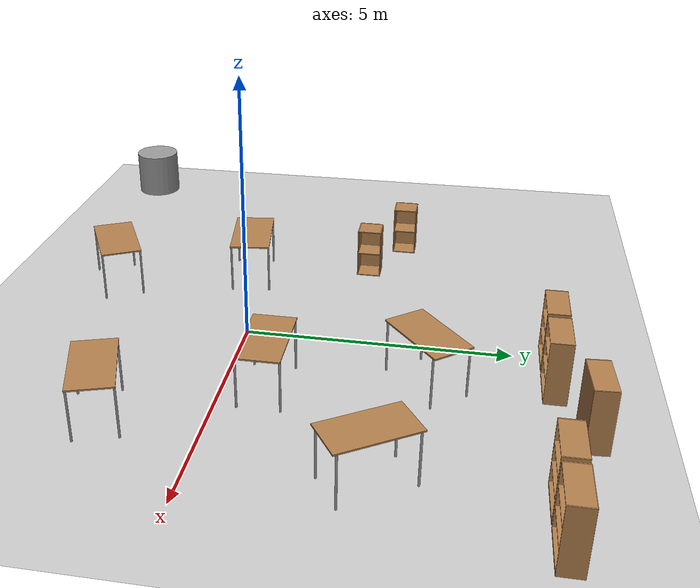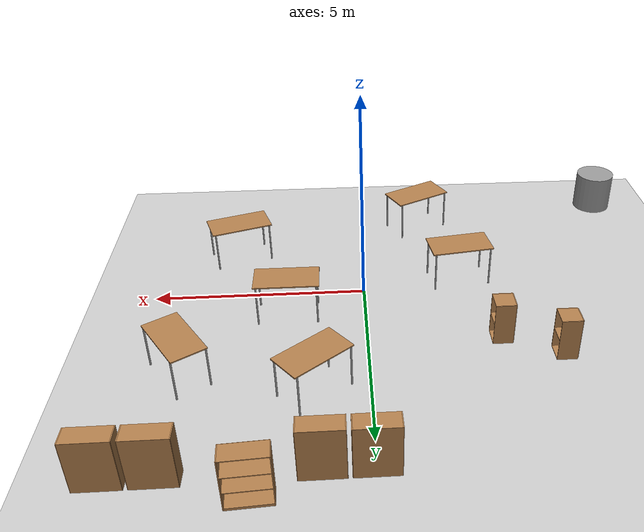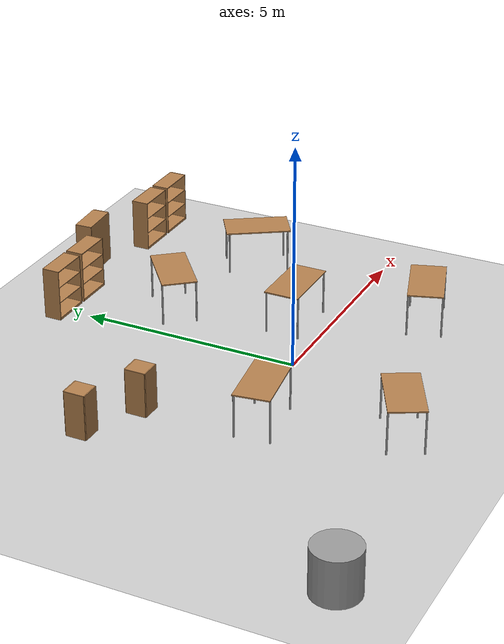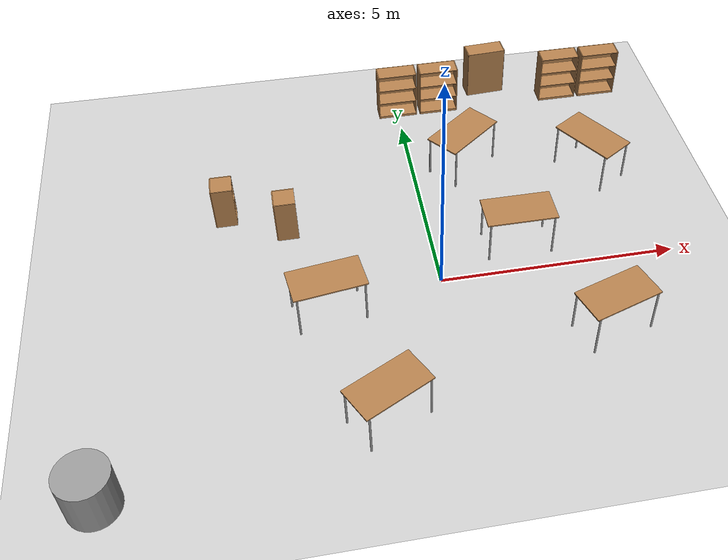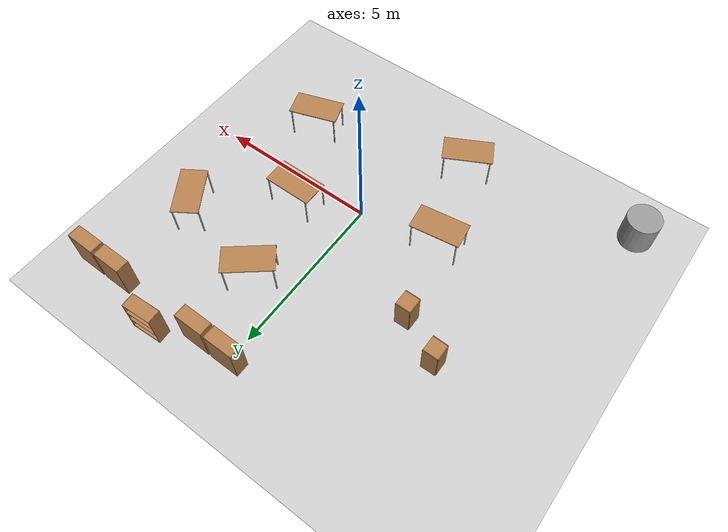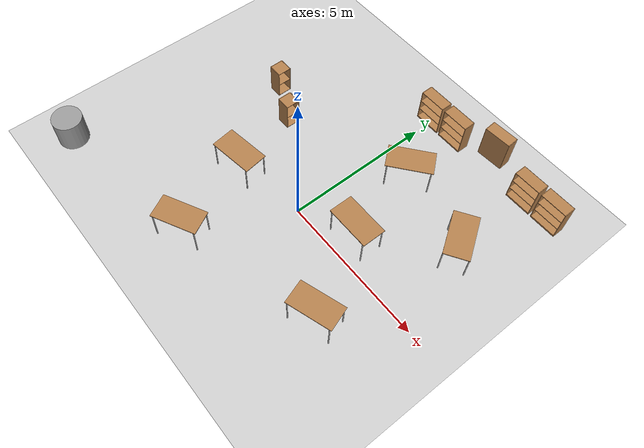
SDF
<sdf version="1.4">
 <world name="default">
  <light name="sun" type="directional">
   <pose>0 0 10 0 -0 0</pose>
   <diffuse>0.8 0.8 0.8 1</diffuse>
   <specular>0.2 0.2 0.2 1</specular>
   <attenuation>
    <range>1000</range>
    <constant>0.9</constant>
    <linear>0.01</linear>
    <quadratic>0.001</quadratic>
   </attenuation>
   <direction>-0.5 0.1 -0.9</direction>
  </light>
  <model name="ground_plane">
   <static>1</static>
   <link name="link">
    <collision name="collision">
     <geometry><plane><normal>0 0 1</normal><size>100 100</size></plane></geometry>
     <surface><friction><ode><mu>100</mu><mu2>50</mu2></ode></friction></surface>
    </collision>
    <visual name="visual">
     <cast_shadows>0</cast_shadows>
     <geometry><plane><normal>0 0 1</normal><size>100 100</size></plane></geometry>
     <material>
      <script><uri>file://media/materials/scripts/gazebo.material</uri><name>Gazebo/Grey</name></script>
     </material>
    </visual>
    <velocity_decay><linear>0</linear><angular>0</angular></velocity_decay>
   </link>
  </model>
  <physics type="ode">
   <max_step_size>0.01</max_step_size>
   <real_time_factor>1</real_time_factor>
   <real_time_update_rate>100</real_time_update_rate>
   <gravity>0 0 -9.8</gravity>
  </physics>
  <model name="table3">
   <static>1</static>
   <link name="link">
    <collision name="surface">
     <pose>0 0 1 0 -0 0</pose>
     <geometry><box><size>1.5 0.8 0.03</size></box></geometry>
     <surface><friction><ode><mu>0.6</mu><mu2>0.6</mu2></ode></friction></surface>
    </collision>
    <visual name="visual1">
     <pose>0 0 1 0 -0 0</pose>
     <geometry><box><size>1.5 0.8 0.03</size></box></geometry>
     <material>
      <script><uri>file://media/materials/scripts/gazebo.material</uri><name>Gazebo/Wood</name></script>
     </material>
    </visual>
    <collision name="front_left_leg">
     <pose>0.68 0.38 0.5 0 -0 0</pose>
     <geometry><cylinder><radius>0.02</radius><length>1</length></cylinder></geometry>
    </collision>
    <visual name="front_left_leg">
     <pose>0.68 0.38 0.5 0 -0 0</pose>
     <geometry><cylinder><radius>0.02</radius><length>1</length></cylinder></geometry>
     <material>
      <script><uri>file://media/materials/scripts/gazebo.material</uri><name>Gazebo/Grey</name></script>
     </material>
    </visual>
    <collision name="front_right_leg">
     <pose>0.68 -0.38 0.5 0 -0 0</pose>
     <geometry><cylinder><radius>0.02</radius><length>1</length></cylinder></geometry>
    </collision>
    <visual name="front_right_leg">
     <pose>0.68 -0.38 0.5 0 -0 0</pose>
     <geometry><cylinder><radius>0.02</radius><length>1</length></cylinder></geometry>
     <material>
      <script><uri>file://media/materials/scripts/gazebo.material</uri><name>Gazebo/Grey</name></script>
     </material>
    </visual>
    <collision name="back_right_leg">
     <pose>-0.68 -0.38 0.5 0 -0 0</pose>
     <geometry><cylinder><radius>0.02</radius><length>1</length></cylinder></geometry>
    </collision>
    <visual name="back_right_leg">
     <pose>-0.68 -0.38 0.5 0 -0 0</pose>
     <geometry><cylinder><radius>0.02</radius><length>1</length></cylinder></geometry>
     <material>
      <script><uri>file://media/materials/scripts/gazebo.material</uri><name>Gazebo/Grey</name></script>
     </material>
    </visual>
    <collision name="back_left_leg">
     <pose>-0.68 0.38 0.5 0 -0 0</pose>
     <geometry><cylinder><radius>0.02</radius><length>1</length></cylinder></geometry>
    </collision>
    <visual name="back_left_leg">
     <pose>-0.68 0.38 0.5 0 -0 0</pose>
     <geometry><cylinder><radius>0.02</radius><length>1</length></cylinder></geometry>
     <material>
      <script><uri>file://media/materials/scripts/gazebo.material</uri><name>Gazebo/Grey</name></script>
     </material>
    </visual>
    <velocity_decay><linear>0</linear><angular>0</angular></velocity_decay>
   </link>
   <pose>3.99958 2.80958 0 0 0 -1</pose>
  </model>
  <model name="table4">
   <static>1</static>
   <link name="link">
    <collision name="surface">
     <pose>0 0 1 0 -0 0</pose>
     <geometry><box><size>1.5 0.8 0.03</size></box></geometry>
     <surface><friction><ode><mu>0.6</mu><mu2>0.6</mu2></ode></friction></surface>
    </collision>
    <visual name="visual1">
     <pose>0 0 1 0 -0 0</pose>
     <geometry><box><size>1.5 0.8 0.03</size></box></geometry>
     <material>
      <script><uri>file://media/materials/scripts/gazebo.material</uri><name>Gazebo/Wood</name></script>
     </material>
    </visual>
    <collision name="front_left_leg">
     <pose>0.68 0.38 0.5 0 -0 0</pose>
     <geometry><cylinder><radius>0.02</radius><length>1</length></cylinder></geometry>
    </collision>
    <visual name="front_left_leg">
     <pose>0.68 0.38 0.5 0 -0 0</pose>
     <geometry><cylinder><radius>0.02</radius><length>1</length></cylinder></geometry>
     <material>
      <script><uri>file://media/materials/scripts/gazebo.material</uri><name>Gazebo/Grey</name></script>
     </material>
    </visual>
    <collision name="front_right_leg">
     <pose>0.68 -0.38 0.5 0 -0 0</pose>
     <geometry><cylinder><radius>0.02</radius><length>1</length></cylinder></geometry>
    </collision>
    <visual name="front_right_leg">
     <pose>0.68 -0.38 0.5 0 -0 0</pose>
     <geometry><cylinder><radius>0.02</radius><length>1</length></cylinder></geometry>
     <material>
      <script><uri>file://media/materials/scripts/gazebo.material</uri><name>Gazebo/Grey</name></script>
     </material>
    </visual>
    <collision name="back_right_leg">
     <pose>-0.68 -0.38 0.5 0 -0 0</pose>
     <geometry><cylinder><radius>0.02</radius><length>1</length></cylinder></geometry>
    </collision>
    <visual name="back_right_leg">
     <pose>-0.68 -0.38 0.5 0 -0 0</pose>
     <geometry><cylinder><radius>0.02</radius><length>1</length></cylinder></geometry>
     <material>
      <script><uri>file://media/materials/scripts/gazebo.material</uri><name>Gazebo/Grey</name></script>
     </material>
    </visual>
    <collision name="back_left_leg">
     <pose>-0.68 0.38 0.5 0 -0 0</pose>
     <geometry><cylinder><radius>0.02</radius><length>1</length></cylinder></geometry>
    </collision>
    <visual name="back_left_leg">
     <pose>-0.68 0.38 0.5 0 -0 0</pose>
     <geometry><cylinder><radius>0.02</radius><length>1</length></cylinder></geometry>
     <material>
      <script><uri>file://media/materials/scripts/gazebo.material</uri><name>Gazebo/Grey</name></script>
     </material>
    </visual>
    <velocity_decay><linear>0</linear><angular>0</angular></velocity_decay>
   </link>
   <pose>1.78676 0.781047 0 0 -0 0</pose>
  </model>
  <model name="table5">
   <static>1</static>
   <link name="link">
    <collision name="surface">
     <pose>0 0 1 0 -0 0</pose>
     <geometry><box><size>1.5 0.8 0.03</size></box></geometry>
     <surface><friction><ode><mu>0.6</mu><mu2>0.6</mu2></ode></friction></surface>
    </collision>
    <visual name="visual1">
     <pose>0 0 1 0 -0 0</pose>
     <geometry><box><size>1.5 0.8 0.03</size></box></geometry>
     <material>
      <script><uri>file://media/materials/scripts/gazebo.material</uri><name>Gazebo/Wood</name></script>
     </material>
    </visual>
    <collision name="front_left_leg">
     <pose>0.68 0.38 0.5 0 -0 0</pose>
     <geometry><cylinder><radius>0.02</radius><length>1</length></cylinder></geometry>
    </collision>
    <visual name="front_left_leg">
     <pose>0.68 0.38 0.5 0 -0 0</pose>
     <geometry><cylinder><radius>0.02</radius><length>1</length></cylinder></geometry>
     <material>
      <script><uri>file://media/materials/scripts/gazebo.material</uri><name>Gazebo/Grey</name></script>
     </material>
    </visual>
    <collision name="front_right_leg">
     <pose>0.68 -0.38 0.5 0 -0 0</pose>
     <geometry><cylinder><radius>0.02</radius><length>1</length></cylinder></geometry>
    </collision>
    <visual name="front_right_leg">
     <pose>0.68 -0.38 0.5 0 -0 0</pose>
     <geometry><cylinder><radius>0.02</radius><length>1</length></cylinder></geometry>
     <material>
      <script><uri>file://media/materials/scripts/gazebo.material</uri><name>Gazebo/Grey</name></script>
     </material>
    </visual>
    <collision name="back_right_leg">
     <pose>-0.68 -0.38 0.5 0 -0 0</pose>
     <geometry><cylinder><radius>0.02</radius><length>1</length></cylinder></geometry>
    </collision>
    <visual name="back_right_leg">
     <pose>-0.68 -0.38 0.5 0 -0 0</pose>
     <geometry><cylinder><radius>0.02</radius><length>1</length></cylinder></geometry>
     <material>
      <script><uri>file://media/materials/scripts/gazebo.material</uri><name>Gazebo/Grey</name></script>
     </material>
    </visual>
    <collision name="back_left_leg">
     <pose>-0.68 0.38 0.5 0 -0 0</pose>
     <geometry><cylinder><radius>0.02</radius><length>1</length></cylinder></geometry>
    </collision>
    <visual name="back_left_leg">
     <pose>-0.68 0.38 0.5 0 -0 0</pose>
     <geometry><cylinder><radius>0.02</radius><length>1</length></cylinder></geometry>
     <material>
      <script><uri>file://media/materials/scripts/gazebo.material</uri><name>Gazebo/Grey</name></script>
     </material>
    </visual>
    <velocity_decay><linear>0</linear><angular>0</angular></velocity_decay>
   </link>
   <pose>3.08573 -1.81367 0 0 -0 0.32</pose>
  </model>
  <model name="table8">
   <static>1</static>
   <link name="link">
    <collision name="surface">
     <pose>0 0 1 0 -0 0</pose>
     <geometry><box><size>1.5 0.8 0.03</size></box></geometry>
     <surface><friction><ode><mu>0.6</mu><mu2>0.6</mu2></ode></friction></surface>
    </collision>
    <visual name="visual1">
     <pose>0 0 1 0 -0 0</pose>
     <geometry><box><size>1.5 0.8 0.03</size></box></geometry>
     <material>
      <script><uri>file://media/materials/scripts/gazebo.material</uri><name>Gazebo/Wood</name></script>
     </material>
    </visual>
    <collision name="front_left_leg">
     <pose>0.68 0.38 0.5 0 -0 0</pose>
     <geometry><cylinder><radius>0.02</radius><length>1</length></cylinder></geometry>
    </collision>
    <visual name="front_left_leg">
     <pose>0.68 0.38 0.5 0 -0 0</pose>
     <geometry><cylinder><radius>0.02</radius><length>1</length></cylinder></geometry>
     <material>
      <script><uri>file://media/materials/scripts/gazebo.material</uri><name>Gazebo/Grey</name></script>
     </material>
    </visual>
    <collision name="front_right_leg">
     <pose>0.68 -0.38 0.5 0 -0 0</pose>
     <geometry><cylinder><radius>0.02</radius><length>1</length></cylinder></geometry>
    </collision>
    <visual name="front_right_leg">
     <pose>0.68 -0.38 0.5 0 -0 0</pose>
     <geometry><cylinder><radius>0.02</radius><length>1</length></cylinder></geometry>
     <material>
      <script><uri>file://media/materials/scripts/gazebo.material</uri><name>Gazebo/Grey</name></script>
     </material>
    </visual>
    <collision name="back_right_leg">
     <pose>-0.68 -0.38 0.5 0 -0 0</pose>
     <geometry><cylinder><radius>0.02</radius><length>1</length></cylinder></geometry>
    </collision>
    <visual name="back_right_leg">
     <pose>-0.68 -0.38 0.5 0 -0 0</pose>
     <geometry><cylinder><radius>0.02</radius><length>1</length></cylinder></geometry>
     <material>
      <script><uri>file://media/materials/scripts/gazebo.material</uri><name>Gazebo/Grey</name></script>
     </material>
    </visual>
    <collision name="back_left_leg">
     <pose>-0.68 0.38 0.5 0 -0 0</pose>
     <geometry><cylinder><radius>0.02</radius><length>1</length></cylinder></geometry>
    </collision>
    <visual name="back_left_leg">
     <pose>-0.68 0.38 0.5 0 -0 0</pose>
     <geometry><cylinder><radius>0.02</radius><length>1</length></cylinder></geometry>
     <material>
      <script><uri>file://media/materials/scripts/gazebo.material</uri><name>Gazebo/Grey</name></script>
     </material>
    </visual>
    <velocity_decay><linear>0</linear><angular>0</angular></velocity_decay>
   </link>
   <pose>1.16047 3.49208 0 0 -0 0.68</pose>
  </model>
  <model name="table9">
   <static>1</static>
   <link name="link">
    <collision name="surface">
     <pose>0 0 1 0 -0 0</pose>
     <geometry><box><size>1.5 0.8 0.03</size></box></geometry>
     <surface><friction><ode><mu>0.6</mu><mu2>0.6</mu2></ode></friction></surface>
    </collision>
    <visual name="visual1">
     <pose>0 0 1 0 -0 0</pose>
     <geometry><box><size>1.5 0.8 0.03</size></box></geometry>
     <material>
      <script><uri>file://media/materials/scripts/gazebo.material</uri><name>Gazebo/Wood</name></script>
     </material>
    </visual>
    <collision name="front_left_leg">
     <pose>0.68 0.38 0.5 0 -0 0</pose>
     <geometry><cylinder><radius>0.02</radius><length>1</length></cylinder></geometry>
    </collision>
    <visual name="front_left_leg">
     <pose>0.68 0.38 0.5 0 -0 0</pose>
     <geometry><cylinder><radius>0.02</radius><length>1</length></cylinder></geometry>
     <material>
      <script><uri>file://media/materials/scripts/gazebo.material</uri><name>Gazebo/Grey</name></script>
     </material>
    </visual>
    <collision name="front_right_leg">
     <pose>0.68 -0.38 0.5 0 -0 0</pose>
     <geometry><cylinder><radius>0.02</radius><length>1</length></cylinder></geometry>
    </collision>
    <visual name="front_right_leg">
     <pose>0.68 -0.38 0.5 0 -0 0</pose>
     <geometry><cylinder><radius>0.02</radius><length>1</length></cylinder></geometry>
     <material>
      <script><uri>file://media/materials/scripts/gazebo.material</uri><name>Gazebo/Grey</name></script>
     </material>
    </visual>
    <collision name="back_right_leg">
     <pose>-0.68 -0.38 0.5 0 -0 0</pose>
     <geometry><cylinder><radius>0.02</radius><length>1</length></cylinder></geometry>
    </collision>
    <visual name="back_right_leg">
     <pose>-0.68 -0.38 0.5 0 -0 0</pose>
     <geometry><cylinder><radius>0.02</radius><length>1</length></cylinder></geometry>
     <material>
      <script><uri>file://media/materials/scripts/gazebo.material</uri><name>Gazebo/Grey</name></script>
     </material>
    </visual>
    <collision name="back_left_leg">
     <pose>-0.68 0.38 0.5 0 -0 0</pose>
     <geometry><cylinder><radius>0.02</radius><length>1</length></cylinder></geometry>
    </collision>
    <visual name="back_left_leg">
     <pose>-0.68 0.38 0.5 0 -0 0</pose>
     <geometry><cylinder><radius>0.02</radius><length>1</length></cylinder></geometry>
     <material>
      <script><uri>file://media/materials/scripts/gazebo.material</uri><name>Gazebo/Grey</name></script>
     </material>
    </visual>
    <velocity_decay><linear>0</linear><angular>0</angular></velocity_decay>
   </link>
   <pose>-2.37428 -0.432545 0 0 0 -3</pose>
  </model>
  <model name="table10">
   <static>1</static>
   <link name="link">
    <collision name="surface">
     <pose>0 0 1 0 -0 0</pose>
     <geometry><box><size>1.5 0.8 0.03</size></box></geometry>
     <surface><friction><ode><mu>0.6</mu><mu2>0.6</mu2></ode></friction></surface>
    </collision>
    <visual name="visual1">
     <pose>0 0 1 0 -0 0</pose>
     <geometry><box><size>1.5 0.8 0.03</size></box></geometry>
     <material>
      <script><uri>file://media/materials/scripts/gazebo.material</uri><name>Gazebo/Wood</name></script>
     </material>
    </visual>
    <collision name="front_left_leg">
     <pose>0.68 0.38 0.5 0 -0 0</pose>
     <geometry><cylinder><radius>0.02</radius><length>1</length></cylinder></geometry>
    </collision>
    <visual name="front_left_leg">
     <pose>0.68 0.38 0.5 0 -0 0</pose>
     <geometry><cylinder><radius>0.02</radius><length>1</length></cylinder></geometry>
     <material>
      <script><uri>file://media/materials/scripts/gazebo.material</uri><name>Gazebo/Grey</name></script>
     </material>
    </visual>
    <collision name="front_right_leg">
     <pose>0.68 -0.38 0.5 0 -0 0</pose>
     <geometry><cylinder><radius>0.02</radius><length>1</length></cylinder></geometry>
    </collision>
    <visual name="front_right_leg">
     <pose>0.68 -0.38 0.5 0 -0 0</pose>
     <geometry><cylinder><radius>0.02</radius><length>1</length></cylinder></geometry>
     <material>
      <script><uri>file://media/materials/scripts/gazebo.material</uri><name>Gazebo/Grey</name></script>
     </material>
    </visual>
    <collision name="back_right_leg">
     <pose>-0.68 -0.38 0.5 0 -0 0</pose>
     <geometry><cylinder><radius>0.02</radius><length>1</length></cylinder></geometry>
    </collision>
    <visual name="back_right_leg">
     <pose>-0.68 -0.38 0.5 0 -0 0</pose>
     <geometry><cylinder><radius>0.02</radius><length>1</length></cylinder></geometry>
     <material>
      <script><uri>file://media/materials/scripts/gazebo.material</uri><name>Gazebo/Grey</name></script>
     </material>
    </visual>
    <collision name="back_left_leg">
     <pose>-0.68 0.38 0.5 0 -0 0</pose>
     <geometry><cylinder><radius>0.02</radius><length>1</length></cylinder></geometry>
    </collision>
    <visual name="back_left_leg">
     <pose>-0.68 0.38 0.5 0 -0 0</pose>
     <geometry><cylinder><radius>0.02</radius><length>1</length></cylinder></geometry>
     <material>
      <script><uri>file://media/materials/scripts/gazebo.material</uri><name>Gazebo/Grey</name></script>
     </material>
    </visual>
    <velocity_decay><linear>0</linear><angular>0</angular></velocity_decay>
   </link>
   <pose>-1.5859 -3.14554 0 0 -0 0.48</pose>
  </model>
  <model name="bookshelf">
   <static>1</static>
   <link name="link">
    <inertial><mass>1</mass></inertial>
    <collision name="back">
     <pose>0 0.005 0.6 0 -0 0</pose>
     <geometry><box><size>0.9 0.01 1.2</size></box></geometry>
    </collision>
    <visual name="visual1">
     <pose>0 0.005 0.6 0 -0 0</pose>
     <geometry><box><size>0.9 0.01 1.2</size></box></geometry>
     <material>
      <script><uri>file://media/materials/scripts/gazebo.material</uri><name>Gazebo/Wood</name></script>
     </material>
    </visual>
    <collision name="left_side">
     <pose>0.45 -0.195 0.6 0 -0 0</pose>
     <geometry><box><size>0.02 0.4 1.2</size></box></geometry>
    </collision>
    <visual name="visual2">
     <pose>0.45 -0.195 0.6 0 -0 0</pose>
     <geometry><box><size>0.02 0.4 1.2</size></box></geometry>
     <material>
      <script><uri>file://media/materials/scripts/gazebo.material</uri><name>Gazebo/Wood</name></script>
     </material>
    </visual>
    <collision name="right_side">
     <pose>-0.45 -0.195 0.6 0 -0 0</pose>
     <geometry><box><size>0.02 0.4 1.2</size></box></geometry>
    </collision>
    <visual name="visual3">
     <pose>-0.45 -0.195 0.6 0 -0 0</pose>
     <geometry><box><size>0.02 0.4 1.2</size></box></geometry>
     <material>
      <script><uri>file://media/materials/scripts/gazebo.material</uri><name>Gazebo/Wood</name></script>
     </material>
    </visual>
    <collision name="bottom">
     <pose>0 -0.195 0.03 0 -0 0</pose>
     <geometry><box><size>0.88 0.4 0.06</size></box></geometry>
    </collision>
    <visual name="visual4">
     <pose>0 -0.195 0.03 0 -0 0</pose>
     <geometry><box><size>0.88 0.4 0.06</size></box></geometry>
     <material>
      <script><uri>file://media/materials/scripts/gazebo.material</uri><name>Gazebo/Wood</name></script>
     </material>
    </visual>
    <collision name="top">
     <pose>0 -0.195 1.19 0 -0 0</pose>
     <geometry><box><size>0.88 0.4 0.02</size></box></geometry>
    </collision>
    <visual name="visual5">
     <pose>0 -0.195 1.19 0 -0 0</pose>
     <geometry><box><size>0.88 0.4 0.02</size></box></geometry>
     <material>
      <script><uri>file://media/materials/scripts/gazebo.material</uri><name>Gazebo/Wood</name></script>
     </material>
    </visual>
    <collision name="low_shelf">
     <pose>0 -0.195 0.43 0 -0 0</pose>
     <geometry><box><size>0.88 0.4 0.02</size></box></geometry>
    </collision>
    <visual name="visual6">
     <pose>0 -0.195 0.43 0 -0 0</pose>
     <geometry><box><size>0.88 0.4 0.02</size></box></geometry>
     <material>
      <script><uri>file://media/materials/scripts/gazebo.material</uri><name>Gazebo/Wood</name></script>
     </material>
    </visual>
    <collision name="high_shelf">
     <pose>0 -0.195 0.8 0 -0 0</pose>
     <geometry><box><size>0.88 0.4 0.02</size></box></geometry>
    </collision>
    <visual name="visual7">
     <pose>0 -0.195 0.8 0 -0 0</pose>
     <geometry><box><size>0.88 0.4 0.02</size></box></geometry>
     <material>
      <script><uri>file://media/materials/scripts/gazebo.material</uri><name>Gazebo/Wood</name></script>
     </material>
    </visual>
    <velocity_decay><linear>0</linear><angular>0</angular></velocity_decay>
   </link>
   <pose>0 5.89 0 0 -0 0</pose>
  </model>
  <model name="bookshelf2">
   <static>1</static>
   <link name="link">
    <inertial><mass>1</mass></inertial>
    <collision name="back">
     <pose>0 0.005 0.6 0 -0 0</pose>
     <geometry><box><size>0.9 0.01 1.2</size></box></geometry>
    </collision>
    <visual name="visual1">
     <pose>0 0.005 0.6 0 -0 0</pose>
     <geometry><box><size>0.9 0.01 1.2</size></box></geometry>
     <material>
      <script><uri>file://media/materials/scripts/gazebo.material</uri><name>Gazebo/Wood</name></script>
     </material>
    </visual>
    <collision name="left_side">
     <pose>0.45 -0.195 0.6 0 -0 0</pose>
     <geometry><box><size>0.02 0.4 1.2</size></box></geometry>
    </collision>
    <visual name="visual2">
     <pose>0.45 -0.195 0.6 0 -0 0</pose>
     <geometry><box><size>0.02 0.4 1.2</size></box></geometry>
     <material>
      <script><uri>file://media/materials/scripts/gazebo.material</uri><name>Gazebo/Wood</name></script>
     </material>
    </visual>
    <collision name="right_side">
     <pose>-0.45 -0.195 0.6 0 -0 0</pose>
     <geometry><box><size>0.02 0.4 1.2</size></box></geometry>
    </collision>
    <visual name="visual3">
     <pose>-0.45 -0.195 0.6 0 -0 0</pose>
     <geometry><box><size>0.02 0.4 1.2</size></box></geometry>
     <material>
      <script><uri>file://media/materials/scripts/gazebo.material</uri><name>Gazebo/Wood</name></script>
     </material>
    </visual>
    <collision name="bottom">
     <pose>0 -0.195 0.03 0 -0 0</pose>
     <geometry><box><size>0.88 0.4 0.06</size></box></geometry>
    </collision>
    <visual name="visual4">
     <pose>0 -0.195 0.03 0 -0 0</pose>
     <geometry><box><size>0.88 0.4 0.06</size></box></geometry>
     <material>
      <script><uri>file://media/materials/scripts/gazebo.material</uri><name>Gazebo/Wood</name></script>
     </material>
    </visual>
    <collision name="top">
     <pose>0 -0.195 1.19 0 -0 0</pose>
     <geometry><box><size>0.88 0.4 0.02</size></box></geometry>
    </collision>
    <visual name="visual5">
     <pose>0 -0.195 1.19 0 -0 0</pose>
     <geometry><box><size>0.88 0.4 0.02</size></box></geometry>
     <material>
      <script><uri>file://media/materials/scripts/gazebo.material</uri><name>Gazebo/Wood</name></script>
     </material>
    </visual>
    <collision name="low_shelf">
     <pose>0 -0.195 0.43 0 -0 0</pose>
     <geometry><box><size>0.88 0.4 0.02</size></box></geometry>
    </collision>
    <visual name="visual6">
     <pose>0 -0.195 0.43 0 -0 0</pose>
     <geometry><box><size>0.88 0.4 0.02</size></box></geometry>
     <material>
      <script><uri>file://media/materials/scripts/gazebo.material</uri><name>Gazebo/Wood</name></script>
     </material>
    </visual>
    <collision name="high_shelf">
     <pose>0 -0.195 0.8 0 -0 0</pose>
     <geometry><box><size>0.88 0.4 0.02</size></box></geometry>
    </collision>
    <visual name="visual7">
     <pose>0 -0.195 0.8 0 -0 0</pose>
     <geometry><box><size>0.88 0.4 0.02</size></box></geometry>
     <material>
      <script><uri>file://media/materials/scripts/gazebo.material</uri><name>Gazebo/Wood</name></script>
     </material>
    </visual>
    <velocity_decay><linear>0</linear><angular>0</angular></velocity_decay>
   </link>
   <pose>1 5.89 0 0 -0 0</pose>
  </model>
  <model name="bookshelf3">
   <static>1</static>
   <link name="link">
    <inertial><mass>1</mass></inertial>
    <collision name="back">
     <pose>0 0.005 0.6 0 -0 0</pose>
     <geometry><box><size>0.9 0.01 1.2</size></box></geometry>
    </collision>
    <visual name="visual1">
     <pose>0 0.005 0.6 0 -0 0</pose>
     <geometry><box><size>0.9 0.01 1.2</size></box></geometry>
     <material>
      <script><uri>file://media/materials/scripts/gazebo.material</uri><name>Gazebo/Wood</name></script>
     </material>
    </visual>
    <collision name="left_side">
     <pose>0.45 -0.195 0.6 0 -0 0</pose>
     <geometry><box><size>0.02 0.4 1.2</size></box></geometry>
    </collision>
    <visual name="visual2">
     <pose>0.45 -0.195 0.6 0 -0 0</pose>
     <geometry><box><size>0.02 0.4 1.2</size></box></geometry>
     <material>
      <script><uri>file://media/materials/scripts/gazebo.material</uri><name>Gazebo/Wood</name></script>
     </material>
    </visual>
    <collision name="right_side">
     <pose>-0.45 -0.195 0.6 0 -0 0</pose>
     <geometry><box><size>0.02 0.4 1.2</size></box></geometry>
    </collision>
    <visual name="visual3">
     <pose>-0.45 -0.195 0.6 0 -0 0</pose>
     <geometry><box><size>0.02 0.4 1.2</size></box></geometry>
     <material>
      <script><uri>file://media/materials/scripts/gazebo.material</uri><name>Gazebo/Wood</name></script>
     </material>
    </visual>
    <collision name="bottom">
     <pose>0 -0.195 0.03 0 -0 0</pose>
     <geometry><box><size>0.88 0.4 0.06</size></box></geometry>
    </collision>
    <visual name="visual4">
     <pose>0 -0.195 0.03 0 -0 0</pose>
     <geometry><box><size>0.88 0.4 0.06</size></box></geometry>
     <material>
      <script><uri>file://media/materials/scripts/gazebo.material</uri><name>Gazebo/Wood</name></script>
     </material>
    </visual>
    <collision name="top">
     <pose>0 -0.195 1.19 0 -0 0</pose>
     <geometry><box><size>0.88 0.4 0.02</size></box></geometry>
    </collision>
    <visual name="visual5">
     <pose>0 -0.195 1.19 0 -0 0</pose>
     <geometry><box><size>0.88 0.4 0.02</size></box></geometry>
     <material>
      <script><uri>file://media/materials/scripts/gazebo.material</uri><name>Gazebo/Wood</name></script>
     </material>
    </visual>
    <collision name="low_shelf">
     <pose>0 -0.195 0.43 0 -0 0</pose>
     <geometry><box><size>0.88 0.4 0.02</size></box></geometry>
    </collision>
    <visual name="visual6">
     <pose>0 -0.195 0.43 0 -0 0</pose>
     <geometry><box><size>0.88 0.4 0.02</size></box></geometry>
     <material>
      <script><uri>file://media/materials/scripts/gazebo.material</uri><name>Gazebo/Wood</name></script>
     </material>
    </visual>
    <collision name="high_shelf">
     <pose>0 -0.195 0.8 0 -0 0</pose>
     <geometry><box><size>0.88 0.4 0.02</size></box></geometry>
    </collision>
    <visual name="visual7">
     <pose>0 -0.195 0.8 0 -0 0</pose>
     <geometry><box><size>0.88 0.4 0.02</size></box></geometry>
     <material>
      <script><uri>file://media/materials/scripts/gazebo.material</uri><name>Gazebo/Wood</name></script>
     </material>
    </visual>
    <velocity_decay><linear>0</linear><angular>0</angular></velocity_decay>
   </link>
   <pose>2.29151 6.05753 0 0 0 -3.08</pose>
  </model>
  <model name="bookshelf5">
   <static>1</static>
   <link name="link">
    <inertial><mass>1</mass></inertial>
    <collision name="back">
     <pose>0 0.005 0.6 0 -0 0</pose>
     <geometry><box><size>0.9 0.01 1.2</size></box></geometry>
    </collision>
    <visual name="visual1">
     <pose>0 0.005 0.6 0 -0 0</pose>
     <geometry><box><size>0.9 0.01 1.2</size></box></geometry>
     <material>
      <script><uri>file://media/materials/scripts/gazebo.material</uri><name>Gazebo/Wood</name></script>
     </material>
    </visual>
    <collision name="left_side">
     <pose>0.45 -0.195 0.6 0 -0 0</pose>
     <geometry><box><size>0.02 0.4 1.2</size></box></geometry>
    </collision>
    <visual name="visual2">
     <pose>0.45 -0.195 0.6 0 -0 0</pose>
     <geometry><box><size>0.02 0.4 1.2</size></box></geometry>
     <material>
      <script><uri>file://media/materials/scripts/gazebo.material</uri><name>Gazebo/Wood</name></script>
     </material>
    </visual>
    <collision name="right_side">
     <pose>-0.45 -0.195 0.6 0 -0 0</pose>
     <geometry><box><size>0.02 0.4 1.2</size></box></geometry>
    </collision>
    <visual name="visual3">
     <pose>-0.45 -0.195 0.6 0 -0 0</pose>
     <geometry><box><size>0.02 0.4 1.2</size></box></geometry>
     <material>
      <script><uri>file://media/materials/scripts/gazebo.material</uri><name>Gazebo/Wood</name></script>
     </material>
    </visual>
    <collision name="bottom">
     <pose>0 -0.195 0.03 0 -0 0</pose>
     <geometry><box><size>0.88 0.4 0.06</size></box></geometry>
    </collision>
    <visual name="visual4">
     <pose>0 -0.195 0.03 0 -0 0</pose>
     <geometry><box><size>0.88 0.4 0.06</size></box></geometry>
     <material>
      <script><uri>file://media/materials/scripts/gazebo.material</uri><name>Gazebo/Wood</name></script>
     </material>
    </visual>
    <collision name="top">
     <pose>0 -0.195 1.19 0 -0 0</pose>
     <geometry><box><size>0.88 0.4 0.02</size></box></geometry>
    </collision>
    <visual name="visual5">
     <pose>0 -0.195 1.19 0 -0 0</pose>
     <geometry><box><size>0.88 0.4 0.02</size></box></geometry>
     <material>
      <script><uri>file://media/materials/scripts/gazebo.material</uri><name>Gazebo/Wood</name></script>
     </material>
    </visual>
    <collision name="low_shelf">
     <pose>0 -0.195 0.43 0 -0 0</pose>
     <geometry><box><size>0.88 0.4 0.02</size></box></geometry>
    </collision>
    <visual name="visual6">
     <pose>0 -0.195 0.43 0 -0 0</pose>
     <geometry><box><size>0.88 0.4 0.02</size></box></geometry>
     <material>
      <script><uri>file://media/materials/scripts/gazebo.material</uri><name>Gazebo/Wood</name></script>
     </material>
    </visual>
    <collision name="high_shelf">
     <pose>0 -0.195 0.8 0 -0 0</pose>
     <geometry><box><size>0.88 0.4 0.02</size></box></geometry>
    </collision>
    <visual name="visual7">
     <pose>0 -0.195 0.8 0 -0 0</pose>
     <geometry><box><size>0.88 0.4 0.02</size></box></geometry>
     <material>
      <script><uri>file://media/materials/scripts/gazebo.material</uri><name>Gazebo/Wood</name></script>
     </material>
    </visual>
    <velocity_decay><linear>0</linear><angular>0</angular></velocity_decay>
   </link>
   <pose>4 5.89 0 0 -0 0</pose>
  </model>
  <model name="bookshelf6">
   <static>1</static>
   <link name="link">
    <inertial><mass>1</mass></inertial>
    <collision name="back">
     <pose>0 0.005 0.6 0 -0 0</pose>
     <geometry><box><size>0.9 0.01 1.2</size></box></geometry>
    </collision>
    <visual name="visual1">
     <pose>0 0.005 0.6 0 -0 0</pose>
     <geometry><box><size>0.9 0.01 1.2</size></box></geometry>
     <material>
      <script><uri>file://media/materials/scripts/gazebo.material</uri><name>Gazebo/Wood</name></script>
     </material>
    </visual>
    <collision name="left_side">
     <pose>0.45 -0.195 0.6 0 -0 0</pose>
     <geometry><box><size>0.02 0.4 1.2</size></box></geometry>
    </collision>
    <visual name="visual2">
     <pose>0.45 -0.195 0.6 0 -0 0</pose>
     <geometry><box><size>0.02 0.4 1.2</size></box></geometry>
     <material>
      <script><uri>file://media/materials/scripts/gazebo.material</uri><name>Gazebo/Wood</name></script>
     </material>
    </visual>
    <collision name="right_side">
     <pose>-0.45 -0.195 0.6 0 -0 0</pose>
     <geometry><box><size>0.02 0.4 1.2</size></box></geometry>
    </collision>
    <visual name="visual3">
     <pose>-0.45 -0.195 0.6 0 -0 0</pose>
     <geometry><box><size>0.02 0.4 1.2</size></box></geometry>
     <material>
      <script><uri>file://media/materials/scripts/gazebo.material</uri><name>Gazebo/Wood</name></script>
     </material>
    </visual>
    <collision name="bottom">
     <pose>0 -0.195 0.03 0 -0 0</pose>
     <geometry><box><size>0.88 0.4 0.06</size></box></geometry>
    </collision>
    <visual name="visual4">
     <pose>0 -0.195 0.03 0 -0 0</pose>
     <geometry><box><size>0.88 0.4 0.06</size></box></geometry>
     <material>
      <script><uri>file://media/materials/scripts/gazebo.material</uri><name>Gazebo/Wood</name></script>
     </material>
    </visual>
    <collision name="top">
     <pose>0 -0.195 1.19 0 -0 0</pose>
     <geometry><box><size>0.88 0.4 0.02</size></box></geometry>
    </collision>
    <visual name="visual5">
     <pose>0 -0.195 1.19 0 -0 0</pose>
     <geometry><box><size>0.88 0.4 0.02</size></box></geometry>
     <material>
      <script><uri>file://media/materials/scripts/gazebo.material</uri><name>Gazebo/Wood</name></script>
     </material>
    </visual>
    <collision name="low_shelf">
     <pose>0 -0.195 0.43 0 -0 0</pose>
     <geometry><box><size>0.88 0.4 0.02</size></box></geometry>
    </collision>
    <visual name="visual6">
     <pose>0 -0.195 0.43 0 -0 0</pose>
     <geometry><box><size>0.88 0.4 0.02</size></box></geometry>
     <material>
      <script><uri>file://media/materials/scripts/gazebo.material</uri><name>Gazebo/Wood</name></script>
     </material>
    </visual>
    <collision name="high_shelf">
     <pose>0 -0.195 0.8 0 -0 0</pose>
     <geometry><box><size>0.88 0.4 0.02</size></box></geometry>
    </collision>
    <visual name="visual7">
     <pose>0 -0.195 0.8 0 -0 0</pose>
     <geometry><box><size>0.88 0.4 0.02</size></box></geometry>
     <material>
      <script><uri>file://media/materials/scripts/gazebo.material</uri><name>Gazebo/Wood</name></script>
     </material>
    </visual>
    <velocity_decay><linear>0</linear><angular>0</angular></velocity_decay>
   </link>
   <pose>5 5.89 0 0 -0 0</pose>
  </model>
  <model name="cabinet">
   <static>1</static>
   <link name="cabinet_bottom_plate">
    <inertial>
     <pose>0 0 -1 0 -0 0</pose>
     <inertia><ixx>2.05</ixx><ixy>0</ixy><ixz>0</ixz><iyy>2.05</iyy><iyz>0</iyz><izz>2.05</izz></inertia>
     <mass>25</mass>
    </inertial>
    <collision name="cabinet_bottom_plate_geom">
     <pose>0 0 0.01 0 -0 0</pose>
     <geometry><box><size>0.45 0.45 0.02</size></box></geometry>
    </collision>
    <visual name="cabinet_bottom_plate_geom_visual">
     <pose>0 0 0.01 0 -0 0</pose>
     <geometry><box><size>0.45 0.45 0.02</size></box></geometry>
     <material>
      <script><uri>file://media/materials/scripts/gazebo.material</uri><name>Gazebo/Wood</name></script>
     </material>
    </visual>
    <collision name="cabinet_bottom_plate_geom_cabinet_back_plate">
     <pose>0.235 0 0.51 0 -0 0</pose>
     <geometry><box><size>0.02 0.45 1.02</size></box></geometry>
    </collision>
    <visual name="cabinet_bottom_plate_geom_cabinet_back_plate_visual">
     <pose>0.235 0 0.51 0 -0 0</pose>
     <geometry><box><size>0.02 0.45 1.02</size></box></geometry>
     <material>
      <script><uri>file://media/materials/scripts/gazebo.material</uri><name>Gazebo/Wood</name></script>
     </material>
    </visual>
    <collision name="cabinet_bottom_plate_geom_cabinet_left_plate">
     <pose>0 0.235 0.51 0 -0 0</pose>
     <geometry><box><size>0.45 0.02 1.02</size></box></geometry>
    </collision>
    <visual name="cabinet_bottom_plate_geom_cabinet_left_plate_visual">
     <pose>0 0.235 0.51 0 -0 0</pose>
     <geometry><box><size>0.45 0.02 1.02</size></box></geometry>
     <material>
      <script><uri>file://media/materials/scripts/gazebo.material</uri><name>Gazebo/Wood</name></script>
     </material>
    </visual>
    <collision name="cabinet_bottom_plate_geom_cabinet_middle_plate">
     <pose>0 0 0.51 0 -0 0</pose>
     <geometry><box><size>0.45 0.45 0.02</size></box></geometry>
    </collision>
    <visual name="cabinet_bottom_plate_geom_cabinet_middle_plate_visual">
     <pose>0 0 0.51 0 -0 0</pose>
     <geometry><box><size>0.45 0.45 0.02</size></box></geometry>
     <material>
      <script><uri>file://media/materials/scripts/gazebo.material</uri><name>Gazebo/Wood</name></script>
     </material>
    </visual>
    <collision name="cabinet_bottom_plate_geom_cabinet_right_plate">
     <pose>0 -0.235 0.51 0 -0 0</pose>
     <geometry><box><size>0.45 0.02 1.02</size></box></geometry>
    </collision>
    <visual name="cabinet_bottom_plate_geom_cabinet_right_plate_visual">
     <pose>0 -0.235 0.51 0 -0 0</pose>
     <geometry><box><size>0.45 0.02 1.02</size></box></geometry>
     <material>
      <script><uri>file://media/materials/scripts/gazebo.material</uri><name>Gazebo/Wood</name></script>
     </material>
    </visual>
    <collision name="cabinet_bottom_plate_geom_cabinet_top_plate">
     <pose>0 0 1.01 0 -0 0</pose>
     <geometry><box><size>0.45 0.45 0.02</size></box></geometry>
    </collision>
    <visual name="cabinet_bottom_plate_geom_cabinet_top_plate_visual">
     <pose>0 0 1.01 0 -0 0</pose>
     <geometry><box><size>0.45 0.45 0.02</size></box></geometry>
     <material>
      <script><uri>file://media/materials/scripts/gazebo.material</uri><name>Gazebo/Wood</name></script>
     </material>
    </visual>
    <velocity_decay><linear>0</linear><angular>0</angular></velocity_decay>
   </link>
   <pose>-3 2 0 0 -0 3.1415</pose>
  </model>
  <model name="cabinet2">
   <static>1</static>
   <link name="cabinet_bottom_plate">
    <inertial>
     <pose>0 0 -1 0 -0 0</pose>
     <inertia><ixx>2.05</ixx><ixy>0</ixy><ixz>0</ixz><iyy>2.05</iyy><iyz>0</iyz><izz>2.05</izz></inertia>
     <mass>25</mass>
    </inertial>
    <collision name="cabinet_bottom_plate_geom">
     <pose>0 0 0.01 0 -0 0</pose>
     <geometry><box><size>0.45 0.45 0.02</size></box></geometry>
    </collision>
    <visual name="cabinet_bottom_plate_geom_visual">
     <pose>0 0 0.01 0 -0 0</pose>
     <geometry><box><size>0.45 0.45 0.02</size></box></geometry>
     <material>
      <script><uri>file://media/materials/scripts/gazebo.material</uri><name>Gazebo/Wood</name></script>
     </material>
    </visual>
    <collision name="cabinet_bottom_plate_geom_cabinet_back_plate">
     <pose>0.235 0 0.51 0 -0 0</pose>
     <geometry><box><size>0.02 0.45 1.02</size></box></geometry>
    </collision>
    <visual name="cabinet_bottom_plate_geom_cabinet_back_plate_visual">
     <pose>0.235 0 0.51 0 -0 0</pose>
     <geometry><box><size>0.02 0.45 1.02</size></box></geometry>
     <material>
      <script><uri>file://media/materials/scripts/gazebo.material</uri><name>Gazebo/Wood</name></script>
     </material>
    </visual>
    <collision name="cabinet_bottom_plate_geom_cabinet_left_plate">
     <pose>0 0.235 0.51 0 -0 0</pose>
     <geometry><box><size>0.45 0.02 1.02</size></box></geometry>
    </collision>
    <visual name="cabinet_bottom_plate_geom_cabinet_left_plate_visual">
     <pose>0 0.235 0.51 0 -0 0</pose>
     <geometry><box><size>0.45 0.02 1.02</size></box></geometry>
     <material>
      <script><uri>file://media/materials/scripts/gazebo.material</uri><name>Gazebo/Wood</name></script>
     </material>
    </visual>
    <collision name="cabinet_bottom_plate_geom_cabinet_middle_plate">
     <pose>0 0 0.51 0 -0 0</pose>
     <geometry><box><size>0.45 0.45 0.02</size></box></geometry>
    </collision>
    <visual name="cabinet_bottom_plate_geom_cabinet_middle_plate_visual">
     <pose>0 0 0.51 0 -0 0</pose>
     <geometry><box><size>0.45 0.45 0.02</size></box></geometry>
     <material>
      <script><uri>file://media/materials/scripts/gazebo.material</uri><name>Gazebo/Wood</name></script>
     </material>
    </visual>
    <collision name="cabinet_bottom_plate_geom_cabinet_right_plate">
     <pose>0 -0.235 0.51 0 -0 0</pose>
     <geometry><box><size>0.45 0.02 1.02</size></box></geometry>
    </collision>
    <visual name="cabinet_bottom_plate_geom_cabinet_right_plate_visual">
     <pose>0 -0.235 0.51 0 -0 0</pose>
     <geometry><box><size>0.45 0.02 1.02</size></box></geometry>
     <material>
      <script><uri>file://media/materials/scripts/gazebo.material</uri><name>Gazebo/Wood</name></script>
     </material>
    </visual>
    <collision name="cabinet_bottom_plate_geom_cabinet_top_plate">
     <pose>0 0 1.01 0 -0 0</pose>
     <geometry><box><size>0.45 0.45 0.02</size></box></geometry>
    </collision>
    <visual name="cabinet_bottom_plate_geom_cabinet_top_plate_visual">
     <pose>0 0 1.01 0 -0 0</pose>
     <geometry><box><size>0.45 0.45 0.02</size></box></geometry>
     <material>
      <script><uri>file://media/materials/scripts/gazebo.material</uri><name>Gazebo/Wood</name></script>
     </material>
    </visual>
    <velocity_decay><linear>0</linear><angular>0</angular></velocity_decay>
   </link>
   <pose>-4.28229 2.64201 0 0 -0 3.1415</pose>
  </model>
  <scene><ambient>0.4 0.4 0.4 1</ambient><background>0.7 0.7 0.7 1</background><shadows>1</shadows></scene>
  <model name="unit_cylinder_1">
   <pose>-6.82263 -4.01145 0.49912 -0 -0 -1e-06</pose>
   <link name="link">
    <inertial>
     <mass>1</mass>
     <inertia><ixx>1</ixx><ixy>0</ixy><ixz>0</ixz><iyy>1</iyy><iyz>0</iyz><izz>1</izz></inertia>
    </inertial>
    <collision name="collision">
     <geometry><cylinder><radius>0.5</radius><length>1</length></cylinder></geometry>
    </collision>
    <visual name="visual">
     <geometry><cylinder><radius>0.5</radius><length>1</length></cylinder></geometry>
     <material>
      <script><uri>file://media/materials/scripts/gazebo.material</uri><name>Gazebo/Grey</name></script>
     </material>
    </visual>
    <velocity_decay><linear>0</linear><angular>0</angular></velocity_decay>
   </link>
   <static>0</static>
  </model>
 </world>
</sdf>
